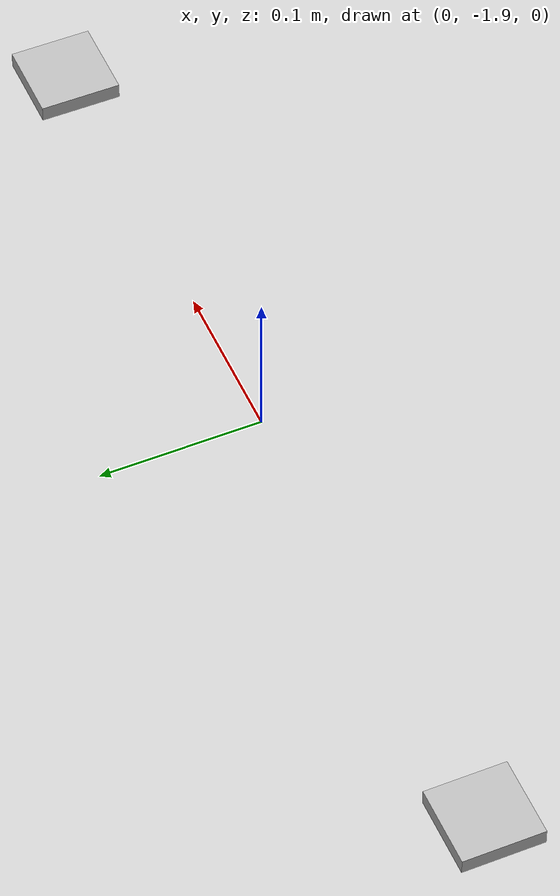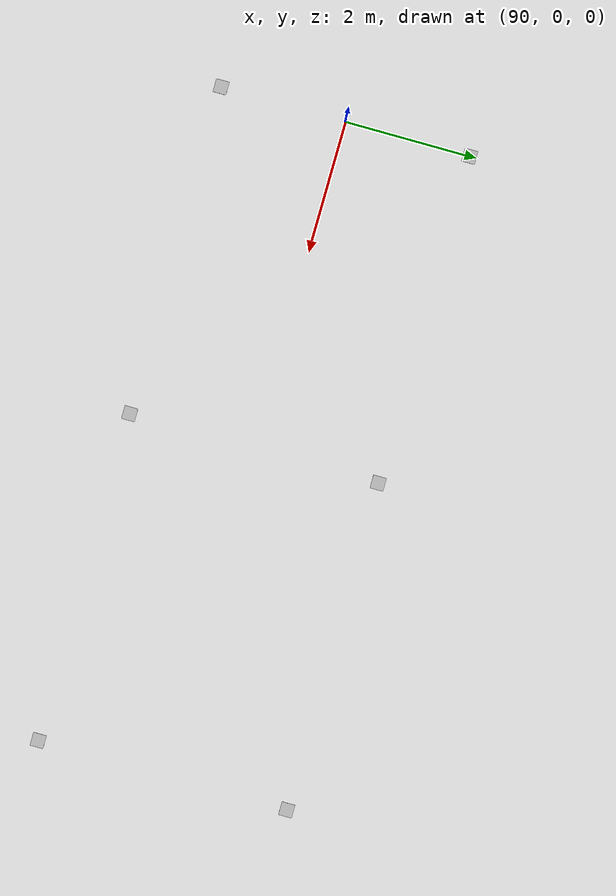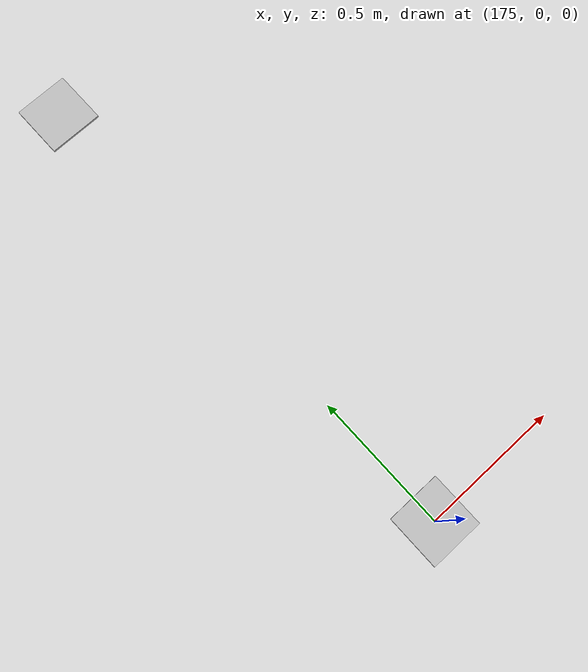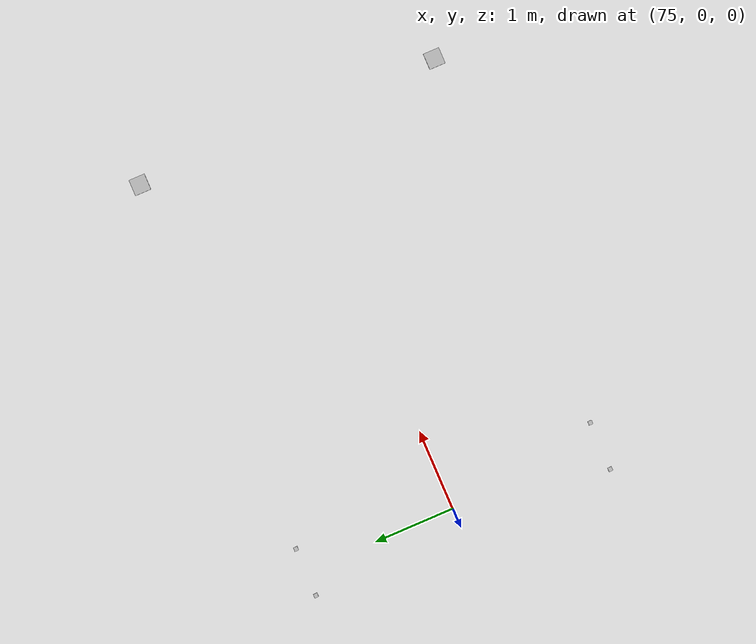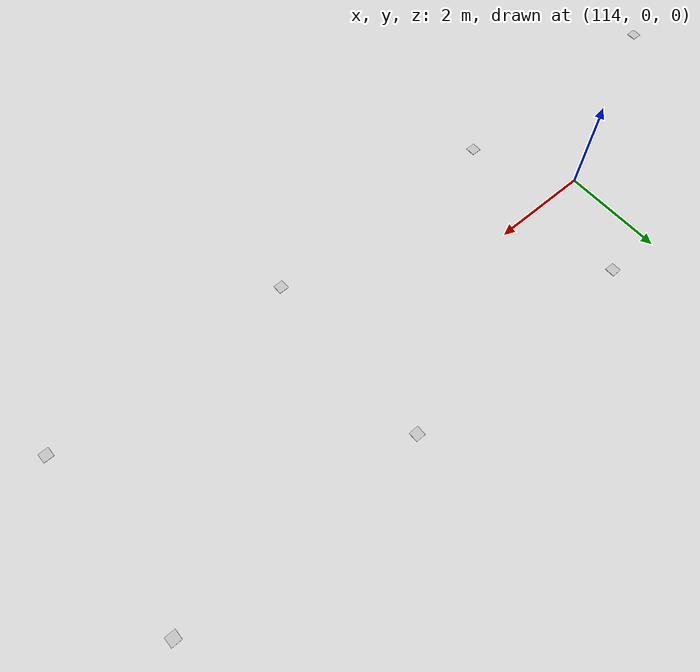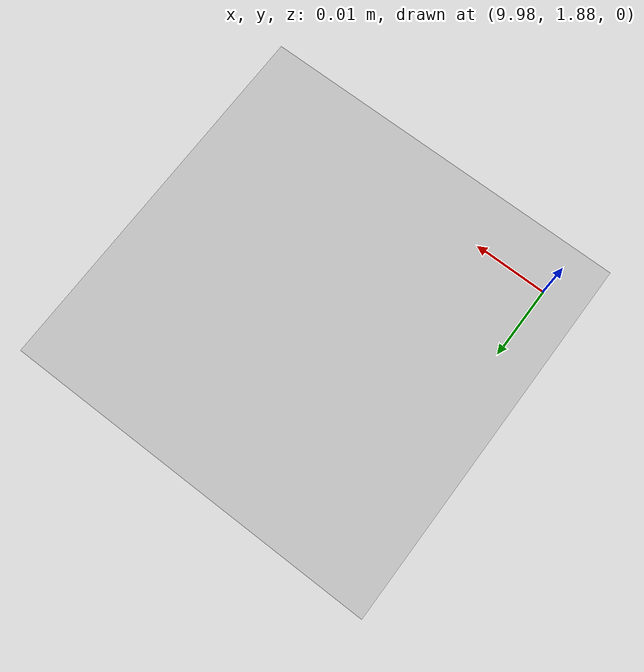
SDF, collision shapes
<?xml version='1.0' encoding='UTF-8'?>
<sdf version="1.4">
  <model name="some track">
    <include>
      <uri>model://cone_blue</uri>
      <pose>5.0 -1.9 0 0 0 0</pose>
      <name>cone_right</name>
    </include>
    <include>
      <uri>model://cone_blue</uri>
      <pose>10.0 -1.9 0 0 0 0</pose>
      <name>cone_right</name>
    </include>
    <include>
      <uri>model://cone_blue</uri>
      <pose>15.0 -1.9 0 0 0 0</pose>
      <name>cone_right</name>
    </include>
    <include>
      <uri>model://cone_blue</uri>
      <pose>20.0 -1.9 0 0 0 0</pose>
      <name>cone_right</name>
    </include>
    <include>
      <uri>model://cone_blue</uri>
      <pose>25.0 -1.9 0 0 0 0</pose>
      <name>cone_right</name>
    </include>
    <include>
      <uri>model://cone_blue</uri>
      <pose>30.0 -1.9 0 0 0 0</pose>
      <name>cone_right</name>
    </include>
    <include>
      <uri>model://cone_blue</uri>
      <pose>35.0 -1.9 0 0 0 0</pose>
      <name>cone_right</name>
    </include>
    <include>
      <uri>model://cone_blue</uri>
      <pose>40.0 -1.9 0 0 0 0</pose>
      <name>cone_right</name>
    </include>
    <include>
      <uri>model://cone_blue</uri>
      <pose>45.0 -1.9 0 0 0 0</pose>
      <name>cone_right</name>
    </include>
    <include>
      <uri>model://cone_blue</uri>
      <pose>50.0 -1.9 0 0 0 0</pose>
      <name>cone_right</name>
    </include>
    <include>
      <uri>model://cone_blue</uri>
      <pose>55.0 -1.9 0 0 0 0</pose>
      <name>cone_right</name>
    </include>
    <include>
      <uri>model://cone_blue</uri>
      <pose>60.0 -1.9 0 0 0 0</pose>
      <name>cone_right</name>
    </include>
    <include>
      <uri>model://cone_blue</uri>
      <pose>65.0 -1.9 0 0 0 0</pose>
      <name>cone_right</name>
    </include>
    <include>
      <uri>model://cone_blue</uri>
      <pose>70.0 -1.9 0 0 0 0</pose>
      <name>cone_right</name>
    </include>
    <include>
      <uri>model://cone_yellow</uri>
      <pose>5.0 1.9 0 0 0 0</pose>
      <name>cone_left</name>
    </include>
    <include>
      <uri>model://cone_yellow</uri>
      <pose>10.0 1.9 0 0 0 0</pose>
      <name>cone_left</name>
    </include>
    <include>
      <uri>model://cone_yellow</uri>
      <pose>15.0 1.9 0 0 0 0</pose>
      <name>cone_left</name>
    </include>
    <include>
      <uri>model://cone_yellow</uri>
      <pose>20.0 1.9 0 0 0 0</pose>
      <name>cone_left</name>
    </include>
    <include>
      <uri>model://cone_yellow</uri>
      <pose>25.0 1.9 0 0 0 0</pose>
      <name>cone_left</name>
    </include>
    <include>
      <uri>model://cone_yellow</uri>
      <pose>30.0 1.9 0 0 0 0</pose>
      <name>cone_left</name>
    </include>
    <include>
      <uri>model://cone_yellow</uri>
      <pose>35.0 1.9 0 0 0 0</pose>
      <name>cone_left</name>
    </include>
    <include>
      <uri>model://cone_yellow</uri>
      <pose>40.0 1.9 0 0 0 0</pose>
      <name>cone_left</name>
    </include>
    <include>
      <uri>model://cone_yellow</uri>
      <pose>45.0 1.9 0 0 0 0</pose>
      <name>cone_left</name>
    </include>
    <include>
      <uri>model://cone_yellow</uri>
      <pose>50.0 1.9 0 0 0 0</pose>
      <name>cone_left</name>
    </include>
    <include>
      <uri>model://cone_yellow</uri>
      <pose>55.0 1.9 0 0 0 0</pose>
      <name>cone_left</name>
    </include>
    <include>
      <uri>model://cone_yellow</uri>
      <pose>60.0 1.9 0 0 0 0</pose>
      <name>cone_left</name>
    </include>
    <include>
      <uri>model://cone_yellow</uri>
      <pose>65.0 1.9 0 0 0 0</pose>
      <name>cone_left</name>
    </include>
    <include>
      <uri>model://cone_yellow</uri>
      <pose>70.0 1.9 0 0 0 0</pose>
      <name>cone_left</name>
    </include>
    <include>
      <uri>model://cone_orange</uri>
      <pose>80.0 1.9 0 0 0 0</pose>
      <name>cone_orange</name>
    </include>
    <include>
      <uri>model://cone_orange</uri>
      <pose>80.0 -1.9 0 0 0 0</pose>
      <name>cone_orange</name>
    </include>
    <include>
      <uri>model://cone_orange</uri>
      <pose>85.0 1.9 0 0 0 0</pose>
      <name>cone_orange</name>
    </include>
    <include>
      <uri>model://cone_orange</uri>
      <pose>85.0 -1.9 0 0 0 0</pose>
      <name>cone_orange</name>
    </include>
    <include>
      <uri>model://cone_orange</uri>
      <pose>90.0 1.9 0 0 0 0</pose>
      <name>cone_orange</name>
    </include>
    <include>
      <uri>model://cone_orange</uri>
      <pose>90.0 -1.9 0 0 0 0</pose>
      <name>cone_orange</name>
    </include>
    <include>
      <uri>model://cone_orange</uri>
      <pose>95.0 1.9 0 0 0 0</pose>
      <name>cone_orange</name>
    </include>
    <include>
      <uri>model://cone_orange</uri>
      <pose>95.0 -1.9 0 0 0 0</pose>
      <name>cone_orange</name>
    </include>
    <include>
      <uri>model://cone_orange</uri>
      <pose>100.0 1.9 0 0 0 0</pose>
      <name>cone_orange</name>
    </include>
    <include>
      <uri>model://cone_orange</uri>
      <pose>100.0 -1.9 0 0 0 0</pose>
      <name>cone_orange</name>
    </include>
    <include>
      <uri>model://cone_orange</uri>
      <pose>105.0 1.9 0 0 0 0</pose>
      <name>cone_orange</name>
    </include>
    <include>
      <uri>model://cone_orange</uri>
      <pose>105.0 -1.9 0 0 0 0</pose>
      <name>cone_orange</name>
    </include>
    <include>
      <uri>model://cone_orange</uri>
      <pose>110.0 1.9 0 0 0 0</pose>
      <name>cone_orange</name>
    </include>
    <include>
      <uri>model://cone_orange</uri>
      <pose>110.0 -1.9 0 0 0 0</pose>
      <name>cone_orange</name>
    </include>
    <include>
      <uri>model://cone_orange</uri>
      <pose>115.0 1.9 0 0 0 0</pose>
      <name>cone_orange</name>
    </include>
    <include>
      <uri>model://cone_orange</uri>
      <pose>115.0 -1.9 0 0 0 0</pose>
      <name>cone_orange</name>
    </include>
    <include>
      <uri>model://cone_orange</uri>
      <pose>120.0 1.9 0 0 0 0</pose>
      <name>cone_orange</name>
    </include>
    <include>
      <uri>model://cone_orange</uri>
      <pose>120.0 -1.9 0 0 0 0</pose>
      <name>cone_orange</name>
    </include>
    <include>
      <uri>model://cone_orange</uri>
      <pose>125.0 1.9 0 0 0 0</pose>
      <name>cone_orange</name>
    </include>
    <include>
      <uri>model://cone_orange</uri>
      <pose>125.0 -1.9 0 0 0 0</pose>
      <name>cone_orange</name>
    </include>
    <include>
      <uri>model://cone_orange</uri>
      <pose>130.0 1.9 0 0 0 0</pose>
      <name>cone_orange</name>
    </include>
    <include>
      <uri>model://cone_orange</uri>
      <pose>130.0 -1.9 0 0 0 0</pose>
      <name>cone_orange</name>
    </include>
    <include>
      <uri>model://cone_orange</uri>
      <pose>135.0 1.9 0 0 0 0</pose>
      <name>cone_orange</name>
    </include>
    <include>
      <uri>model://cone_orange</uri>
      <pose>135.0 -1.9 0 0 0 0</pose>
      <name>cone_orange</name>
    </include>
    <include>
      <uri>model://cone_orange</uri>
      <pose>140.0 1.9 0 0 0 0</pose>
      <name>cone_orange</name>
    </include>
    <include>
      <uri>model://cone_orange</uri>
      <pose>140.0 -1.9 0 0 0 0</pose>
      <name>cone_orange</name>
    </include>
    <include>
      <uri>model://cone_orange</uri>
      <pose>145.0 1.9 0 0 0 0</pose>
      <name>cone_orange</name>
    </include>
    <include>
      <uri>model://cone_orange</uri>
      <pose>145.0 -1.9 0 0 0 0</pose>
      <name>cone_orange</name>
    </include>
    <include>
      <uri>model://cone_orange</uri>
      <pose>150.0 1.9 0 0 0 0</pose>
      <name>cone_orange</name>
    </include>
    <include>
      <uri>model://cone_orange</uri>
      <pose>150.0 -1.9 0 0 0 0</pose>
      <name>cone_orange</name>
    </include>
    <include>
      <uri>model://cone_orange</uri>
      <pose>155.0 1.9 0 0 0 0</pose>
      <name>cone_orange</name>
    </include>
    <include>
      <uri>model://cone_orange</uri>
      <pose>155.0 -1.9 0 0 0 0</pose>
      <name>cone_orange</name>
    </include>
    <include>
      <uri>model://cone_orange</uri>
      <pose>160.0 1.9 0 0 0 0</pose>
      <name>cone_orange</name>
    </include>
    <include>
      <uri>model://cone_orange</uri>
      <pose>160.0 -1.9 0 0 0 0</pose>
      <name>cone_orange</name>
    </include>
    <include>
      <uri>model://cone_orange</uri>
      <pose>165.0 1.9 0 0 0 0</pose>
      <name>cone_orange</name>
    </include>
    <include>
      <uri>model://cone_orange</uri>
      <pose>165.0 -1.9 0 0 0 0</pose>
      <name>cone_orange</name>
    </include>
    <include>
      <uri>model://cone_orange</uri>
      <pose>170.0 1.9 0 0 0 0</pose>
      <name>cone_orange</name>
    </include>
    <include>
      <uri>model://cone_orange</uri>
      <pose>170.0 -1.9 0 0 0 0</pose>
      <name>cone_orange</name>
    </include>
    <include>
      <uri>model://cone_orange</uri>
      <pose>175.0 1.9 0 0 0 0</pose>
      <name>cone_orange</name>
    </include>
    <include>
      <uri>model://cone_orange</uri>
      <pose>175.0 -1.9 0 0 0 0</pose>
      <name>cone_orange</name>
    </include>
    <include>
      <uri>model://cone_orange</uri>
      <pose>175.0 0.0 0 0 0 0</pose>
      <name>cone_orange</name>
    </include>
    <include>
      <uri>model://cone_orange</uri>
      <pose>175.0 1.9 0 0 0 0</pose>
      <name>cone_orange</name>
    </include>
    <include>
      <uri>model://cone_orange_big</uri>
      <pose>-0.3 1.9 0 0 0 0</pose>
      <name>cone_orange_big</name>
    </include>
    <include>
      <uri>model://cone_orange_big</uri>
      <pose>-0.3 -1.9 0 0 0 0</pose>
      <name>cone_orange_big</name>
    </include>
    <include>
      <uri>model://cone_orange_big</uri>
      <pose>0.3 1.9 0 0 0 0</pose>
      <name>cone_orange_big</name>
    </include>
    <include>
      <uri>model://cone_orange_big</uri>
      <pose>0.3 -1.9 0 0 0 0</pose>
      <name>cone_orange_big</name>
    </include>
    <include>
      <uri>model://cone_orange_big</uri>
      <pose>74.7 1.9 0 0 0 0</pose>
      <name>cone_orange_big</name>
    </include>
    <include>
      <uri>model://cone_orange_big</uri>
      <pose>74.7 -1.9 0 0 0 0</pose>
      <name>cone_orange_big</name>
    </include>
    <include>
      <uri>model://cone_orange_big</uri>
      <pose>75.3 1.9 0 0 0 0</pose>
      <name>cone_orange_big</name>
    </include>
    <include>
      <uri>model://cone_orange_big</uri>
      <pose>75.3 -1.9 0 0 0 0</pose>
      <name>cone_orange_big</name>
    </include>
  </model>
</sdf>

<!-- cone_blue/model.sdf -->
<sdf version='1.4'>
  <model name="cone_blue">
    <link name="link">
    <collision name="collision"><geometry><box><size> 0.05 0.05 0.01</size>
             </box></geometry></collision>
      <visual name="visual">
        <geometry>
          <mesh>
            <uri>model://cup.dae</uri>
            <scale>1 1 1</scale>
          </mesh>
        </geometry>
        <material>
            <script>
              <uri>model://cone_blue/materials/scripts</uri>
              <uri>model://cone_blue/materials/textures</uri>
              <name>cone_blue/Image</name>
            </script>
        </material>
      </visual>
    </link>
  </model>
</sdf>

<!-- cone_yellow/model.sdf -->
<sdf version='1.4'>
  <model name="cone_yellow">
    <link name="link">
    <collision name="collision"><geometry><box><size> 0.05 0.05 0.01</size>
             </box></geometry></collision>
      <visual name="visual">
        <geometry>
          <mesh>
            <uri>model://cup.dae</uri>
            <scale>1 1 1</scale>
          </mesh>
        </geometry>
        <material>
            <script>
              <uri>model://cone_yellow/materials/scripts</uri>
              <uri>model://cone_yellow/materials/textures</uri>
              <name>cone_yellow/Image</name>
            </script>
        </material>
      </visual>
    </link>
  </model>
</sdf>

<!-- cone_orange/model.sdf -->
<sdf version='1.4'>
  <model name="cone_blue">
    <link name="link">
      <collision name="collision"><geometry><box><size> 0.2 0.2 0.01</size>
               </box></geometry></collision>
      <visual name="visual">
        <geometry>
          <mesh>
            <uri>model://OrangeCone.dae</uri>
            <scale>1 1 1</scale>
          </mesh>
        </geometry>
      </visual>
    </link>
  </model>
</sdf>

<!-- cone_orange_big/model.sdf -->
<sdf version='1.4'>
  <model name="cone_orange_big">
    <link name="link">
    <collision name="collision"><geometry><box><size> 0.05 0.05 0.01</size>
             </box></geometry></collision>
      <visual name="visual">
        <geometry>
          <mesh>
            <uri>model://cup.dae</uri>
            <scale>1 1 1</scale>
          </mesh>
        </geometry>
        <material>
            <script>
              <uri>model://cone_orange_big/materials/scripts</uri>
              <uri>model://cone_orange_big/materials/textures</uri>
              <name>cone_orange_big/Image</name>
            </script>
        </material>
      </visual>
    </link>
  </model>
</sdf>
